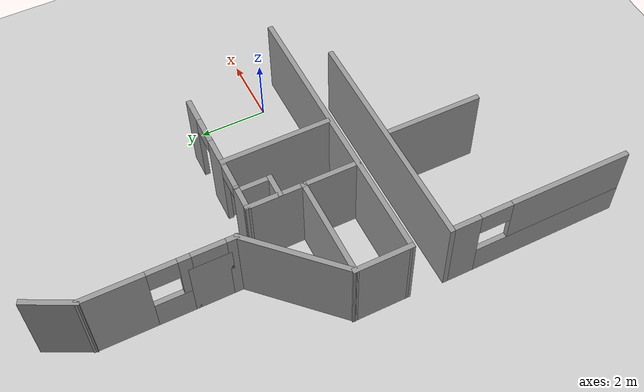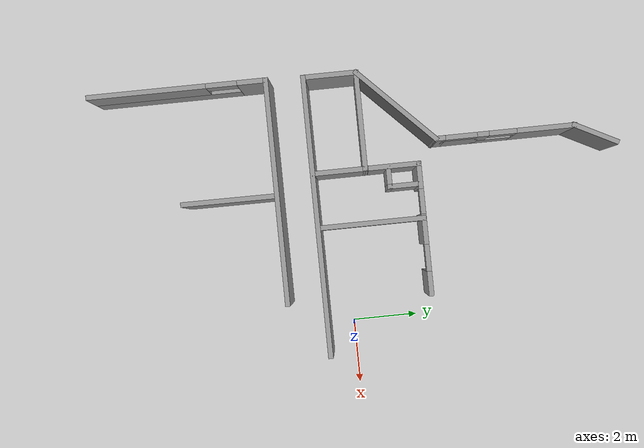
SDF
<sdf version="1.7">
 <world name="default">
  <model name="ground_plane">
   <static>1</static>
   <link name="link">
    <collision name="collision">
     <geometry><plane><normal>0 0 1</normal><size>100 100</size></plane></geometry>
     <surface><friction><ode><mu>100</mu><mu2>50</mu2></ode></friction></surface>
    </collision>
    <visual name="visual">
     <cast_shadows>0</cast_shadows>
     <geometry><plane><normal>0 0 1</normal><size>100 100</size></plane></geometry>
     <material>
      <script><uri>file://media/materials/scripts/gazebo.material</uri><name>Gazebo/Grey</name></script>
     </material>
    </visual>
   </link>
  </model>
  <model name="lake_harbour_office">
   <link name="Wall_26">
    <pose>-4.26687 8.47883 0 0 0 -2.04113</pose>
    <visual name="Wall_26_Visual">
     <pose>0 0 1.25 0 -0 0</pose>
     <geometry><box><size>1.5119 0.15 2.5</size></box></geometry>
     <material>
      <script><uri>file://media/materials/scripts/gazebo.material</uri><name>Gazebo/Grey</name></script>
      <ambient>1 1 1 1</ambient>
      <shader type="pixel"/>
     </material>
     <meta><layer>0</layer></meta>
    </visual>
    <collision name="Wall_26_Collision">
     <pose>0 0 1.25 0 -0 0</pose>
     <geometry><box><size>1.5119 0.15 2.5</size></box></geometry>
     <surface>
      <friction>
       <ode><mu>1</mu><mu2>1</mu2><fdir1>0 0 0</fdir1><slip1>0</slip1><slip2>0</slip2></ode>
       <torsional>
        <coefficient>1</coefficient>
        <patch_radius>0</patch_radius>
        <surface_radius>0</surface_radius>
        <use_patch_radius>1</use_patch_radius>
        <ode><slip>0</slip></ode>
       </torsional>
      </friction>
      <bounce><restitution_coefficient>0</restitution_coefficient><threshold>1e+06</threshold></bounce>
      <contact>
       <collide_without_contact>0</collide_without_contact>
       <collide_without_contact_bitmask>1</collide_without_contact_bitmask>
       <collide_bitmask>1</collide_bitmask>
       <ode>
        <soft_cfm>0</soft_cfm>
        <soft_erp>0.2</soft_erp>
        <kp>1e+13</kp>
        <kd>1</kd>
        <max_vel>0.01</max_vel>
        <min_depth>0</min_depth>
       </ode>
       <bullet>
        <split_impulse>1</split_impulse>
        <split_impulse_penetration_threshold>-0.01</split_impulse_penetration_threshold>
        <soft_cfm>0</soft_cfm>
        <soft_erp>0.2</soft_erp>
        <kp>1e+13</kp>
        <kd>1</kd>
       </bullet>
      </contact>
     </surface>
    </collision>
   </link>
   <link name="Wall_28">
    <pose>-4.57547 5.77869 0 0 0 -1.5708</pose>
    <inertial>
     <mass>1</mass>
     <inertia><ixx>1</ixx><ixy>0</ixy><ixz>0</ixz><iyy>1</iyy><iyz>0</iyz><izz>1</izz></inertia>
    </inertial>
    <visual name="Wall_28_Visual_5">
     <pose>1.32226 0 2.25 0 -0 0</pose>
     <geometry><box><size>0.960993 0.15 0.5</size></box></geometry>
     <material>
      <script><uri>file://media/materials/scripts/gazebo.material</uri><name>Gazebo/Grey</name></script>
      <ambient>1 1 1 1</ambient>
      <shader type="pixel"><normal_map>__default__</normal_map></shader>
      <diffuse>0.7 0.7 0.7 1</diffuse>
      <specular>0.01 0.01 0.01 1</specular>
      <emissive>0 0 0 1</emissive>
     </material>
     <meta><layer>0</layer></meta>
    </visual>
    <visual name="Wall_28_Visual_4">
     <pose>0.066565 0 2.15 0 -0 0</pose>
     <geometry><box><size>0.840547 0.15 0.7</size></box></geometry>
     <material>
      <script><uri>file://media/materials/scripts/gazebo.material</uri><name>Gazebo/Grey</name></script>
      <ambient>1 1 1 1</ambient>
      <shader type="pixel"><normal_map>__default__</normal_map></shader>
      <diffuse>0.7 0.7 0.7 1</diffuse>
      <specular>0.01 0.01 0.01 1</specular>
      <emissive>0 0 0 1</emissive>
     </material>
     <meta><layer>0</layer></meta>
    </visual>
    <visual name="Wall_28_Visual_0">
     <pose>-1.26092 0 1.25 0 -0 0</pose>
     <geometry><box><size>1.81443 0.15 2.5</size></box></geometry>
     <material>
      <script><uri>file://media/materials/scripts/gazebo.material</uri><name>Gazebo/Grey</name></script>
      <ambient>1 1 1 1</ambient>
      <shader type="pixel"><normal_map>__default__</normal_map></shader>
      <diffuse>0.7 0.7 0.7 1</diffuse>
      <specular>0.01 0.01 0.01 1</specular>
      <emissive>0 0 0 1</emissive>
     </material>
     <meta><layer>0</layer></meta>
    </visual>
    <visual name="Wall_28_Visual_2">
     <pose>0.244026 0 0.5 0 -0 0</pose>
     <geometry><box><size>1.19547 0.15 1</size></box></geometry>
     <material>
      <script><uri>file://media/materials/scripts/gazebo.material</uri><name>Gazebo/Grey</name></script>
      <ambient>1 1 1 1</ambient>
      <shader type="pixel"><normal_map>__default__</normal_map></shader>
      <diffuse>0.7 0.7 0.7 1</diffuse>
      <specular>0.01 0.01 0.01 1</specular>
      <emissive>0 0 0 1</emissive>
     </material>
     <meta><layer>0</layer></meta>
    </visual>
    <visual name="Wall_28_Visual_3">
     <pose>0.6643 0 1.75 0 -0 0</pose>
     <geometry><box><size>0.354924 0.15 1.5</size></box></geometry>
     <material>
      <script><uri>file://media/materials/scripts/gazebo.material</uri><name>Gazebo/Grey</name></script>
      <ambient>1 1 1 1</ambient>
      <shader type="pixel"><normal_map>__default__</normal_map></shader>
      <diffuse>0.7 0.7 0.7 1</diffuse>
      <specular>0.01 0.01 0.01 1</specular>
      <emissive>0 0 0 1</emissive>
     </material>
     <meta><layer>0</layer></meta>
    </visual>
    <visual name="Wall_28_Visual_1">
     <pose>1.98545 0 1.25 0 -0 0</pose>
     <geometry><box><size>0.365381 0.15 2.5</size></box></geometry>
     <material>
      <script><uri>file://media/materials/scripts/gazebo.material</uri><name>Gazebo/Grey</name></script>
      <ambient>1 1 1 1</ambient>
      <shader type="pixel"><normal_map>__default__</normal_map></shader>
      <diffuse>0.7 0.7 0.7 1</diffuse>
      <specular>0.01 0.01 0.01 1</specular>
      <emissive>0 0 0 1</emissive>
     </material>
     <meta><layer>0</layer></meta>
    </visual>
    <visual name="ModelPreview_5::Wall_28::visual_6">
     <pose>1.3 0 1 0 -0 0</pose>
     <geometry><box><size>1.2 0.15 2</size></box></geometry>
     <material>
      <script><uri>file://media/materials/scripts/gazebo.material</uri><name>Gazebo/Grey</name></script>
      <ambient>1 1 1 1</ambient>
      <shader type="pixel"><normal_map>__default__</normal_map></shader>
      <diffuse>0.7 0.7 0.7 1</diffuse>
      <specular>0.01 0.01 0.01 1</specular>
      <emissive>0 0 0 1</emissive>
     </material>
     <meta><layer>0</layer></meta>
    </visual>
    <collision name="Wall_28_Collision_5">
     <pose>1.32226 0 2.25 0 -0 0</pose>
     <geometry><box><size>0.960993 0.15 0.5</size></box></geometry>
     <surface>
      <friction>
       <ode><mu>1</mu><mu2>1</mu2><fdir1>0 0 0</fdir1><slip1>0</slip1><slip2>0</slip2></ode>
       <torsional>
        <coefficient>1</coefficient>
        <patch_radius>0</patch_radius>
        <surface_radius>0</surface_radius>
        <use_patch_radius>1</use_patch_radius>
        <ode><slip>0</slip></ode>
       </torsional>
      </friction>
      <bounce><restitution_coefficient>0</restitution_coefficient><threshold>1e+06</threshold></bounce>
      <contact>
       <collide_without_contact>0</collide_without_contact>
       <collide_without_contact_bitmask>1</collide_without_contact_bitmask>
       <collide_bitmask>1</collide_bitmask>
       <ode>
        <soft_cfm>0</soft_cfm>
        <soft_erp>0.2</soft_erp>
        <kp>1e+13</kp>
        <kd>1</kd>
        <max_vel>0.01</max_vel>
        <min_depth>0</min_depth>
       </ode>
       <bullet>
        <split_impulse>1</split_impulse>
        <split_impulse_penetration_threshold>-0.01</split_impulse_penetration_threshold>
        <soft_cfm>0</soft_cfm>
        <soft_erp>0.2</soft_erp>
        <kp>1e+13</kp>
        <kd>1</kd>
       </bullet>
      </contact>
     </surface>
    </collision>
    <collision name="Wall_28_Collision_4">
     <pose>0.066565 0 2.15 0 -0 0</pose>
     <geometry><box><size>0.840547 0.15 0.7</size></box></geometry>
     <surface>
      <friction>
       <ode><mu>1</mu><mu2>1</mu2><fdir1>0 0 0</fdir1><slip1>0</slip1><slip2>0</slip2></ode>
       <torsional>
        <coefficient>1</coefficient>
        <patch_radius>0</patch_radius>
        <surface_radius>0</surface_radius>
        <use_patch_radius>1</use_patch_radius>
        <ode><slip>0</slip></ode>
       </torsional>
      </friction>
      <bounce><restitution_coefficient>0</restitution_coefficient><threshold>1e+06</threshold></bounce>
      <contact>
       <collide_without_contact>0</collide_without_contact>
       <collide_without_contact_bitmask>1</collide_without_contact_bitmask>
       <collide_bitmask>1</collide_bitmask>
       <ode>
        <soft_cfm>0</soft_cfm>
        <soft_erp>0.2</soft_erp>
        <kp>1e+13</kp>
        <kd>1</kd>
        <max_vel>0.01</max_vel>
        <min_depth>0</min_depth>
       </ode>
       <bullet>
        <split_impulse>1</split_impulse>
        <split_impulse_penetration_threshold>-0.01</split_impulse_penetration_threshold>
        <soft_cfm>0</soft_cfm>
        <soft_erp>0.2</soft_erp>
        <kp>1e+13</kp>
        <kd>1</kd>
       </bullet>
      </contact>
     </surface>
    </collision>
    <collision name="Wall_28_Collision_2">
     <pose>0.244026 0 0.5 0 -0 0</pose>
     <geometry><box><size>1.19547 0.15 1</size></box></geometry>
     <surface>
      <friction>
       <ode><mu>1</mu><mu2>1</mu2><fdir1>0 0 0</fdir1><slip1>0</slip1><slip2>0</slip2></ode>
       <torsional>
        <coefficient>1</coefficient>
        <patch_radius>0</patch_radius>
        <surface_radius>0</surface_radius>
        <use_patch_radius>1</use_patch_radius>
        <ode><slip>0</slip></ode>
       </torsional>
      </friction>
      <bounce><restitution_coefficient>0</restitution_coefficient><threshold>1e+06</threshold></bounce>
      <contact>
       <collide_without_contact>0</collide_without_contact>
       <collide_without_contact_bitmask>1</collide_without_contact_bitmask>
       <collide_bitmask>1</collide_bitmask>
       <ode>
        <soft_cfm>0</soft_cfm>
        <soft_erp>0.2</soft_erp>
        <kp>1e+13</kp>
        <kd>1</kd>
        <max_vel>0.01</max_vel>
        <min_depth>0</min_depth>
       </ode>
       <bullet>
        <split_impulse>1</split_impulse>
        <split_impulse_penetration_threshold>-0.01</split_impulse_penetration_threshold>
        <soft_cfm>0</soft_cfm>
        <soft_erp>0.2</soft_erp>
        <kp>1e+13</kp>
        <kd>1</kd>
       </bullet>
      </contact>
     </surface>
    </collision>
    <collision name="collision_6">
     <pose>1.3 0 1 0 -0 0</pose>
     <geometry><box><size>1.2 0.15 2</size></box></geometry>
     <surface>
      <friction>
       <ode><mu>1</mu><mu2>1</mu2><fdir1>0 0 0</fdir1><slip1>0</slip1><slip2>0</slip2></ode>
       <torsional>
        <coefficient>1</coefficient>
        <patch_radius>0</patch_radius>
        <surface_radius>0</surface_radius>
        <use_patch_radius>1</use_patch_radius>
        <ode><slip>0</slip></ode>
       </torsional>
      </friction>
      <bounce><restitution_coefficient>0</restitution_coefficient><threshold>1e+06</threshold></bounce>
      <contact>
       <collide_without_contact>0</collide_without_contact>
       <collide_without_contact_bitmask>1</collide_without_contact_bitmask>
       <collide_bitmask>1</collide_bitmask>
       <ode>
        <soft_cfm>0</soft_cfm>
        <soft_erp>0.2</soft_erp>
        <kp>1e+13</kp>
        <kd>1</kd>
        <max_vel>0.01</max_vel>
        <min_depth>0</min_depth>
       </ode>
       <bullet>
        <split_impulse>1</split_impulse>
        <split_impulse_penetration_threshold>-0.01</split_impulse_penetration_threshold>
        <soft_cfm>0</soft_cfm>
        <soft_erp>0.2</soft_erp>
        <kp>1e+13</kp>
        <kd>1</kd>
       </bullet>
      </contact>
     </surface>
    </collision>
    <collision name="Wall_28_Collision_3">
     <pose>0.6643 0 1.75 0 -0 0</pose>
     <geometry><box><size>0.354924 0.15 1.5</size></box></geometry>
     <surface>
      <friction>
       <ode><mu>1</mu><mu2>1</mu2><fdir1>0 0 0</fdir1><slip1>0</slip1><slip2>0</slip2></ode>
       <torsional>
        <coefficient>1</coefficient>
        <patch_radius>0</patch_radius>
        <surface_radius>0</surface_radius>
        <use_patch_radius>1</use_patch_radius>
        <ode><slip>0</slip></ode>
       </torsional>
      </friction>
      <bounce><restitution_coefficient>0</restitution_coefficient><threshold>1e+06</threshold></bounce>
      <contact>
       <collide_without_contact>0</collide_without_contact>
       <collide_without_contact_bitmask>1</collide_without_contact_bitmask>
       <collide_bitmask>1</collide_bitmask>
       <ode>
        <soft_cfm>0</soft_cfm>
        <soft_erp>0.2</soft_erp>
        <kp>1e+13</kp>
        <kd>1</kd>
        <max_vel>0.01</max_vel>
        <min_depth>0</min_depth>
       </ode>
       <bullet>
        <split_impulse>1</split_impulse>
        <split_impulse_penetration_threshold>-0.01</split_impulse_penetration_threshold>
        <soft_cfm>0</soft_cfm>
        <soft_erp>0.2</soft_erp>
        <kp>1e+13</kp>
        <kd>1</kd>
       </bullet>
      </contact>
     </surface>
    </collision>
    <collision name="Wall_28_Collision_1">
     <pose>1.98545 0 1.25 0 -0 0</pose>
     <geometry><box><size>0.365381 0.15 2.5</size></box></geometry>
     <surface>
      <friction>
       <ode><mu>1</mu><mu2>1</mu2><fdir1>0 0 0</fdir1><slip1>0</slip1><slip2>0</slip2></ode>
       <torsional>
        <coefficient>1</coefficient>
        <patch_radius>0</patch_radius>
        <surface_radius>0</surface_radius>
        <use_patch_radius>1</use_patch_radius>
        <ode><slip>0</slip></ode>
       </torsional>
      </friction>
      <bounce><restitution_coefficient>0</restitution_coefficient><threshold>1e+06</threshold></bounce>
      <contact>
       <collide_without_contact>0</collide_without_contact>
       <collide_without_contact_bitmask>1</collide_without_contact_bitmask>
       <collide_bitmask>1</collide_bitmask>
       <ode>
        <soft_cfm>0</soft_cfm>
        <soft_erp>0.2</soft_erp>
        <kp>1e+13</kp>
        <kd>1</kd>
        <max_vel>0.01</max_vel>
        <min_depth>0</min_depth>
       </ode>
       <bullet>
        <split_impulse>1</split_impulse>
        <split_impulse_penetration_threshold>-0.01</split_impulse_penetration_threshold>
        <soft_cfm>0</soft_cfm>
        <soft_erp>0.2</soft_erp>
        <kp>1e+13</kp>
        <kd>1</kd>
       </bullet>
      </contact>
     </surface>
    </collision>
    <collision name="Wall_28_Collision_0">
     <pose>-1.26092 0 1.25 0 -0 0</pose>
     <geometry><box><size>1.81443 0.15 2.5</size></box></geometry>
     <surface>
      <friction>
       <ode><mu>1</mu><mu2>1</mu2><fdir1>0 0 0</fdir1><slip1>0</slip1><slip2>0</slip2></ode>
       <torsional>
        <coefficient>1</coefficient>
        <patch_radius>0</patch_radius>
        <surface_radius>0</surface_radius>
        <use_patch_radius>1</use_patch_radius>
        <ode><slip>0</slip></ode>
       </torsional>
      </friction>
      <bounce><restitution_coefficient>0</restitution_coefficient><threshold>1e+06</threshold></bounce>
      <contact>
       <collide_without_contact>0</collide_without_contact>
       <collide_without_contact_bitmask>1</collide_without_contact_bitmask>
       <collide_bitmask>1</collide_bitmask>
       <ode>
        <soft_cfm>0</soft_cfm>
        <soft_erp>0.2</soft_erp>
        <kp>1e+13</kp>
        <kd>1</kd>
        <max_vel>0.01</max_vel>
        <min_depth>0</min_depth>
       </ode>
       <bullet>
        <split_impulse>1</split_impulse>
        <split_impulse_penetration_threshold>-0.01</split_impulse_penetration_threshold>
        <soft_cfm>0</soft_cfm>
        <soft_erp>0.2</soft_erp>
        <kp>1e+13</kp>
        <kd>1</kd>
       </bullet>
      </contact>
     </surface>
    </collision>
   </link>
   <link name="Wall_30">
    <pose>-5.6836 2.58621 0 0 0 -2.36018</pose>
    <visual name="Wall_30_Visual">
     <pose>0 0 1.25 0 -0 0</pose>
     <geometry><box><size>3.27185 0.15 2.5</size></box></geometry>
     <material>
      <script><uri>file://media/materials/scripts/gazebo.material</uri><name>Gazebo/Grey</name></script>
      <ambient>1 1 1 1</ambient>
      <shader type="pixel"/>
     </material>
     <meta><layer>0</layer></meta>
    </visual>
    <collision name="Wall_30_Collision">
     <pose>0 0 1.25 0 -0 0</pose>
     <geometry><box><size>3.27185 0.15 2.5</size></box></geometry>
     <surface>
      <friction>
       <ode><mu>1</mu><mu2>1</mu2><fdir1>0 0 0</fdir1><slip1>0</slip1><slip2>0</slip2></ode>
       <torsional>
        <coefficient>1</coefficient>
        <patch_radius>0</patch_radius>
        <surface_radius>0</surface_radius>
        <use_patch_radius>1</use_patch_radius>
        <ode><slip>0</slip></ode>
       </torsional>
      </friction>
      <bounce><restitution_coefficient>0</restitution_coefficient><threshold>1e+06</threshold></bounce>
      <contact>
       <collide_without_contact>0</collide_without_contact>
       <collide_without_contact_bitmask>1</collide_without_contact_bitmask>
       <collide_bitmask>1</collide_bitmask>
       <ode>
        <soft_cfm>0</soft_cfm>
        <soft_erp>0.2</soft_erp>
        <kp>1e+13</kp>
        <kd>1</kd>
        <max_vel>0.01</max_vel>
        <min_depth>0</min_depth>
       </ode>
       <bullet>
        <split_impulse>1</split_impulse>
        <split_impulse_penetration_threshold>-0.01</split_impulse_penetration_threshold>
        <soft_cfm>0</soft_cfm>
        <soft_erp>0.2</soft_erp>
        <kp>1e+13</kp>
        <kd>1</kd>
       </bullet>
      </contact>
     </surface>
    </collision>
   </link>
   <link name="Wall_32">
    <pose>-6.80053 0.686876 0 0 0 -1.5708</pose>
    <visual name="Wall_32_Visual">
     <pose>0 0 1.25 0 -0 0</pose>
     <geometry><box><size>1.75 0.15 2.5</size></box></geometry>
     <material>
      <script><uri>file://media/materials/scripts/gazebo.material</uri><name>Gazebo/Grey</name></script>
      <ambient>1 1 1 1</ambient>
      <shader type="pixel"/>
     </material>
     <meta><layer>0</layer></meta>
    </visual>
    <collision name="Wall_32_Collision">
     <pose>0 0 1.25 0 -0 0</pose>
     <geometry><box><size>1.75 0.15 2.5</size></box></geometry>
     <surface>
      <friction>
       <ode><mu>1</mu><mu2>1</mu2><fdir1>0 0 0</fdir1><slip1>0</slip1><slip2>0</slip2></ode>
       <torsional>
        <coefficient>1</coefficient>
        <patch_radius>0</patch_radius>
        <surface_radius>0</surface_radius>
        <use_patch_radius>1</use_patch_radius>
        <ode><slip>0</slip></ode>
       </torsional>
      </friction>
      <bounce><restitution_coefficient>0</restitution_coefficient><threshold>1e+06</threshold></bounce>
      <contact>
       <collide_without_contact>0</collide_without_contact>
       <collide_without_contact_bitmask>1</collide_without_contact_bitmask>
       <collide_bitmask>1</collide_bitmask>
       <ode>
        <soft_cfm>0</soft_cfm>
        <soft_erp>0.2</soft_erp>
        <kp>1e+13</kp>
        <kd>1</kd>
        <max_vel>0.01</max_vel>
        <min_depth>0</min_depth>
       </ode>
       <bullet>
        <split_impulse>1</split_impulse>
        <split_impulse_penetration_threshold>-0.01</split_impulse_penetration_threshold>
        <soft_cfm>0</soft_cfm>
        <soft_erp>0.2</soft_erp>
        <kp>1e+13</kp>
        <kd>1</kd>
       </bullet>
      </contact>
     </surface>
    </collision>
   </link>
   <link name="Wall_34">
    <pose>-2.59189 -0.111503 0 0 -0 0.000385</pose>
    <visual name="Wall_34_Visual">
     <pose>0 0 1.25 0 -0 0</pose>
     <geometry><box><size>8.56728 0.15 2.5</size></box></geometry>
     <material>
      <script><uri>file://media/materials/scripts/gazebo.material</uri><name>Gazebo/Grey</name></script>
      <ambient>1 1 1 1</ambient>
      <shader type="pixel"/>
     </material>
     <meta><layer>0</layer></meta>
    </visual>
    <collision name="Wall_34_Collision">
     <pose>0 0 1.25 0 -0 0</pose>
     <geometry><box><size>8.56728 0.15 2.5</size></box></geometry>
     <surface>
      <friction>
       <ode><mu>1</mu><mu2>1</mu2><fdir1>0 0 0</fdir1><slip1>0</slip1><slip2>0</slip2></ode>
       <torsional>
        <coefficient>1</coefficient>
        <patch_radius>0</patch_radius>
        <surface_radius>0</surface_radius>
        <use_patch_radius>1</use_patch_radius>
        <ode><slip>0</slip></ode>
       </torsional>
      </friction>
      <bounce><restitution_coefficient>0</restitution_coefficient><threshold>1e+06</threshold></bounce>
      <contact>
       <collide_without_contact>0</collide_without_contact>
       <collide_without_contact_bitmask>1</collide_without_contact_bitmask>
       <collide_bitmask>1</collide_bitmask>
       <ode>
        <soft_cfm>0</soft_cfm>
        <soft_erp>0.2</soft_erp>
        <kp>1e+13</kp>
        <kd>1</kd>
        <max_vel>0.01</max_vel>
        <min_depth>0</min_depth>
       </ode>
       <bullet>
        <split_impulse>1</split_impulse>
        <split_impulse_penetration_threshold>-0.01</split_impulse_penetration_threshold>
        <soft_cfm>0</soft_cfm>
        <soft_erp>0.2</soft_erp>
        <kp>1e+13</kp>
        <kd>1</kd>
       </bullet>
      </contact>
     </surface>
    </collision>
   </link>
   <link name="Wall_46">
    <pose>-5.34461 1.48325 0 0 0 -0.002488</pose>
    <visual name="Wall_46_Visual">
     <pose>0 0 1.25 0 -0 0</pose>
     <geometry><box><size>3.06184 0.15 2.5</size></box></geometry>
     <material>
      <script><uri>file://media/materials/scripts/gazebo.material</uri><name>Gazebo/Grey</name></script>
      <ambient>1 1 1 1</ambient>
      <shader type="pixel"/>
     </material>
     <meta><layer>0</layer></meta>
    </visual>
    <collision name="Wall_46_Collision">
     <pose>0 0 1.25 0 -0 0</pose>
     <geometry><box><size>3.06184 0.15 2.5</size></box></geometry>
     <surface>
      <friction>
       <ode><mu>1</mu><mu2>1</mu2><fdir1>0 0 0</fdir1><slip1>0</slip1><slip2>0</slip2></ode>
       <torsional>
        <coefficient>1</coefficient>
        <patch_radius>0</patch_radius>
        <surface_radius>0</surface_radius>
        <use_patch_radius>1</use_patch_radius>
        <ode><slip>0</slip></ode>
       </torsional>
      </friction>
      <bounce><restitution_coefficient>0</restitution_coefficient><threshold>1e+06</threshold></bounce>
      <contact>
       <collide_without_contact>0</collide_without_contact>
       <collide_without_contact_bitmask>1</collide_without_contact_bitmask>
       <collide_bitmask>1</collide_bitmask>
       <ode>
        <soft_cfm>0</soft_cfm>
        <soft_erp>0.2</soft_erp>
        <kp>1e+13</kp>
        <kd>1</kd>
        <max_vel>0.01</max_vel>
        <min_depth>0</min_depth>
       </ode>
       <bullet>
        <split_impulse>1</split_impulse>
        <split_impulse_penetration_threshold>-0.01</split_impulse_penetration_threshold>
        <soft_cfm>0</soft_cfm>
        <soft_erp>0.2</soft_erp>
        <kp>1e+13</kp>
        <kd>1</kd>
       </bullet>
      </contact>
     </surface>
    </collision>
   </link>
   <link name="Wall_48">
    <pose>-3.88869 0.693247 0 0 -0 1.5708</pose>
    <visual name="Wall_48_Visual">
     <pose>0 0 1.25 0 -0 0</pose>
     <geometry><box><size>1.75 0.15 2.5</size></box></geometry>
     <material>
      <script><uri>file://media/materials/scripts/gazebo.material</uri><name>Gazebo/Grey</name></script>
      <ambient>1 1 1 1</ambient>
      <shader type="pixel"/>
     </material>
     <meta><layer>0</layer></meta>
    </visual>
    <collision name="Wall_48_Collision">
     <pose>0 0 1.25 0 -0 0</pose>
     <geometry><box><size>1.75 0.15 2.5</size></box></geometry>
     <surface>
      <friction>
       <ode><mu>1</mu><mu2>1</mu2><fdir1>0 0 0</fdir1><slip1>0</slip1><slip2>0</slip2></ode>
       <torsional>
        <coefficient>1</coefficient>
        <patch_radius>0</patch_radius>
        <surface_radius>0</surface_radius>
        <use_patch_radius>1</use_patch_radius>
        <ode><slip>0</slip></ode>
       </torsional>
      </friction>
      <bounce><restitution_coefficient>0</restitution_coefficient><threshold>1e+06</threshold></bounce>
      <contact>
       <collide_without_contact>0</collide_without_contact>
       <collide_without_contact_bitmask>1</collide_without_contact_bitmask>
       <collide_bitmask>1</collide_bitmask>
       <ode>
        <soft_cfm>0</soft_cfm>
        <soft_erp>0.2</soft_erp>
        <kp>1e+13</kp>
        <kd>1</kd>
        <max_vel>0.01</max_vel>
        <min_depth>0</min_depth>
       </ode>
       <bullet>
        <split_impulse>1</split_impulse>
        <split_impulse_penetration_threshold>-0.01</split_impulse_penetration_threshold>
        <soft_cfm>0</soft_cfm>
        <soft_erp>0.2</soft_erp>
        <kp>1e+13</kp>
        <kd>1</kd>
       </bullet>
      </contact>
     </surface>
    </collision>
   </link>
   <link name="Wall_49">
    <pose>-3.88939 2.29243 0 0 -0 1.57167</pose>
    <visual name="Wall_49_Visual">
     <pose>0 0 1.25 0 -0 0</pose>
     <geometry><box><size>1.74836 0.15 2.5</size></box></geometry>
     <material>
      <script><uri>file://media/materials/scripts/gazebo.material</uri><name>Gazebo/Grey</name></script>
      <ambient>1 1 1 1</ambient>
      <shader type="pixel"/>
     </material>
     <meta><layer>0</layer></meta>
    </visual>
    <collision name="Wall_49_Collision">
     <pose>0 0 1.25 0 -0 0</pose>
     <geometry><box><size>1.74836 0.15 2.5</size></box></geometry>
     <surface>
      <friction>
       <ode><mu>1</mu><mu2>1</mu2><fdir1>0 0 0</fdir1><slip1>0</slip1><slip2>0</slip2></ode>
       <torsional>
        <coefficient>1</coefficient>
        <patch_radius>0</patch_radius>
        <surface_radius>0</surface_radius>
        <use_patch_radius>1</use_patch_radius>
        <ode><slip>0</slip></ode>
       </torsional>
      </friction>
      <bounce><restitution_coefficient>0</restitution_coefficient><threshold>1e+06</threshold></bounce>
      <contact>
       <collide_without_contact>0</collide_without_contact>
       <collide_without_contact_bitmask>1</collide_without_contact_bitmask>
       <collide_bitmask>1</collide_bitmask>
       <ode>
        <soft_cfm>0</soft_cfm>
        <soft_erp>0.2</soft_erp>
        <kp>1e+13</kp>
        <kd>1</kd>
        <max_vel>0.01</max_vel>
        <min_depth>0</min_depth>
       </ode>
       <bullet>
        <split_impulse>1</split_impulse>
        <split_impulse_penetration_threshold>-0.01</split_impulse_penetration_threshold>
        <soft_cfm>0</soft_cfm>
        <soft_erp>0.2</soft_erp>
        <kp>1e+13</kp>
        <kd>1</kd>
       </bullet>
      </contact>
     </surface>
    </collision>
   </link>
   <link name="Wall_50">
    <pose>-1.92323 3.09226 0 0 -0 0.000329</pose>
    <visual name="Wall_50_Visual_4">
     <pose>0.884999 0 2.25 0 -0 0</pose>
     <geometry><box><size>0.813108 0.15 0.5</size></box></geometry>
     <material>
      <script><uri>file://media/materials/scripts/gazebo.material</uri><name>Gazebo/Grey</name></script>
      <ambient>1 1 1 1</ambient>
      <shader type="pixel"/>
     </material>
     <meta><layer>0</layer></meta>
    </visual>
    <visual name="Wall_50_Visual_3">
     <pose>-0.823912 0 2.25 0 -0 0</pose>
     <geometry><box><size>0.759629 0.15 0.5</size></box></geometry>
     <material>
      <script><uri>file://media/materials/scripts/gazebo.material</uri><name>Gazebo/Grey</name></script>
      <ambient>1 1 1 1</ambient>
      <shader type="pixel"/>
     </material>
     <meta><layer>0</layer></meta>
    </visual>
    <visual name="Wall_50_Visual_0">
     <pose>-1.62279 0 1.25 0 -0 0</pose>
     <geometry><box><size>0.838129 0.15 2.5</size></box></geometry>
     <material>
      <script><uri>file://media/materials/scripts/gazebo.material</uri><name>Gazebo/Grey</name></script>
      <ambient>1 1 1 1</ambient>
      <shader type="pixel"/>
     </material>
     <meta><layer>0</layer></meta>
    </visual>
    <visual name="Wall_50_Visual_2">
     <pose>1.6667 0 1.25 0 -0 0</pose>
     <geometry><box><size>0.750303 0.15 2.5</size></box></geometry>
     <material>
      <script><uri>file://media/materials/scripts/gazebo.material</uri><name>Gazebo/Grey</name></script>
      <ambient>1 1 1 1</ambient>
      <shader type="pixel"/>
     </material>
     <meta><layer>0</layer></meta>
    </visual>
    <visual name="Wall_50_Visual_1">
     <pose>0.017174 0 1.25 0 -0 0</pose>
     <geometry><box><size>0.922542 0.15 2.5</size></box></geometry>
     <material>
      <script><uri>file://media/materials/scripts/gazebo.material</uri><name>Gazebo/Grey</name></script>
      <ambient>1 1 1 1</ambient>
      <shader type="pixel"/>
     </material>
     <meta><layer>0</layer></meta>
    </visual>
    <collision name="Wall_50_Collision_1">
     <pose>0.017174 0 1.25 0 -0 0</pose>
     <geometry><box><size>0.922542 0.15 2.5</size></box></geometry>
     <surface>
      <friction>
       <ode><mu>1</mu><mu2>1</mu2><fdir1>0 0 0</fdir1><slip1>0</slip1><slip2>0</slip2></ode>
       <torsional>
        <coefficient>1</coefficient>
        <patch_radius>0</patch_radius>
        <surface_radius>0</surface_radius>
        <use_patch_radius>1</use_patch_radius>
        <ode><slip>0</slip></ode>
       </torsional>
      </friction>
      <bounce><restitution_coefficient>0</restitution_coefficient><threshold>1e+06</threshold></bounce>
      <contact>
       <collide_without_contact>0</collide_without_contact>
       <collide_without_contact_bitmask>1</collide_without_contact_bitmask>
       <collide_bitmask>1</collide_bitmask>
       <ode>
        <soft_cfm>0</soft_cfm>
        <soft_erp>0.2</soft_erp>
        <kp>1e+13</kp>
        <kd>1</kd>
        <max_vel>0.01</max_vel>
        <min_depth>0</min_depth>
       </ode>
       <bullet>
        <split_impulse>1</split_impulse>
        <split_impulse_penetration_threshold>-0.01</split_impulse_penetration_threshold>
        <soft_cfm>0</soft_cfm>
        <soft_erp>0.2</soft_erp>
        <kp>1e+13</kp>
        <kd>1</kd>
       </bullet>
      </contact>
     </surface>
    </collision>
    <collision name="Wall_50_Collision_4">
     <pose>0.884999 0 2.25 0 -0 0</pose>
     <geometry><box><size>0.813108 0.15 0.5</size></box></geometry>
     <surface>
      <friction>
       <ode><mu>1</mu><mu2>1</mu2><fdir1>0 0 0</fdir1><slip1>0</slip1><slip2>0</slip2></ode>
       <torsional>
        <coefficient>1</coefficient>
        <patch_radius>0</patch_radius>
        <surface_radius>0</surface_radius>
        <use_patch_radius>1</use_patch_radius>
        <ode><slip>0</slip></ode>
       </torsional>
      </friction>
      <bounce><restitution_coefficient>0</restitution_coefficient><threshold>1e+06</threshold></bounce>
      <contact>
       <collide_without_contact>0</collide_without_contact>
       <collide_without_contact_bitmask>1</collide_without_contact_bitmask>
       <collide_bitmask>1</collide_bitmask>
       <ode>
        <soft_cfm>0</soft_cfm>
        <soft_erp>0.2</soft_erp>
        <kp>1e+13</kp>
        <kd>1</kd>
        <max_vel>0.01</max_vel>
        <min_depth>0</min_depth>
       </ode>
       <bullet>
        <split_impulse>1</split_impulse>
        <split_impulse_penetration_threshold>-0.01</split_impulse_penetration_threshold>
        <soft_cfm>0</soft_cfm>
        <soft_erp>0.2</soft_erp>
        <kp>1e+13</kp>
        <kd>1</kd>
       </bullet>
      </contact>
     </surface>
    </collision>
    <collision name="Wall_50_Collision_0">
     <pose>-1.62279 0 1.25 0 -0 0</pose>
     <geometry><box><size>0.838129 0.15 2.5</size></box></geometry>
     <surface>
      <friction>
       <ode><mu>1</mu><mu2>1</mu2><fdir1>0 0 0</fdir1><slip1>0</slip1><slip2>0</slip2></ode>
       <torsional>
        <coefficient>1</coefficient>
        <patch_radius>0</patch_radius>
        <surface_radius>0</surface_radius>
        <use_patch_radius>1</use_patch_radius>
        <ode><slip>0</slip></ode>
       </torsional>
      </friction>
      <bounce><restitution_coefficient>0</restitution_coefficient><threshold>1e+06</threshold></bounce>
      <contact>
       <collide_without_contact>0</collide_without_contact>
       <collide_without_contact_bitmask>1</collide_without_contact_bitmask>
       <collide_bitmask>1</collide_bitmask>
       <ode>
        <soft_cfm>0</soft_cfm>
        <soft_erp>0.2</soft_erp>
        <kp>1e+13</kp>
        <kd>1</kd>
        <max_vel>0.01</max_vel>
        <min_depth>0</min_depth>
       </ode>
       <bullet>
        <split_impulse>1</split_impulse>
        <split_impulse_penetration_threshold>-0.01</split_impulse_penetration_threshold>
        <soft_cfm>0</soft_cfm>
        <soft_erp>0.2</soft_erp>
        <kp>1e+13</kp>
        <kd>1</kd>
       </bullet>
      </contact>
     </surface>
    </collision>
    <collision name="Wall_50_Collision_3">
     <pose>-0.823912 0 2.25 0 -0 0</pose>
     <geometry><box><size>0.759629 0.15 0.5</size></box></geometry>
     <surface>
      <friction>
       <ode><mu>1</mu><mu2>1</mu2><fdir1>0 0 0</fdir1><slip1>0</slip1><slip2>0</slip2></ode>
       <torsional>
        <coefficient>1</coefficient>
        <patch_radius>0</patch_radius>
        <surface_radius>0</surface_radius>
        <use_patch_radius>1</use_patch_radius>
        <ode><slip>0</slip></ode>
       </torsional>
      </friction>
      <bounce><restitution_coefficient>0</restitution_coefficient><threshold>1e+06</threshold></bounce>
      <contact>
       <collide_without_contact>0</collide_without_contact>
       <collide_without_contact_bitmask>1</collide_without_contact_bitmask>
       <collide_bitmask>1</collide_bitmask>
       <ode>
        <soft_cfm>0</soft_cfm>
        <soft_erp>0.2</soft_erp>
        <kp>1e+13</kp>
        <kd>1</kd>
        <max_vel>0.01</max_vel>
        <min_depth>0</min_depth>
       </ode>
       <bullet>
        <split_impulse>1</split_impulse>
        <split_impulse_penetration_threshold>-0.01</split_impulse_penetration_threshold>
        <soft_cfm>0</soft_cfm>
        <soft_erp>0.2</soft_erp>
        <kp>1e+13</kp>
        <kd>1</kd>
       </bullet>
      </contact>
     </surface>
    </collision>
    <collision name="Wall_50_Collision_2">
     <pose>1.6667 0 1.25 0 -0 0</pose>
     <geometry><box><size>0.750303 0.15 2.5</size></box></geometry>
     <surface>
      <friction>
       <ode><mu>1</mu><mu2>1</mu2><fdir1>0 0 0</fdir1><slip1>0</slip1><slip2>0</slip2></ode>
       <torsional>
        <coefficient>1</coefficient>
        <patch_radius>0</patch_radius>
        <surface_radius>0</surface_radius>
        <use_patch_radius>1</use_patch_radius>
        <ode><slip>0</slip></ode>
       </torsional>
      </friction>
      <bounce><restitution_coefficient>0</restitution_coefficient><threshold>1e+06</threshold></bounce>
      <contact>
       <collide_without_contact>0</collide_without_contact>
       <collide_without_contact_bitmask>1</collide_without_contact_bitmask>
       <collide_bitmask>1</collide_bitmask>
       <ode>
        <soft_cfm>0</soft_cfm>
        <soft_erp>0.2</soft_erp>
        <kp>1e+13</kp>
        <kd>1</kd>
        <max_vel>0.01</max_vel>
        <min_depth>0</min_depth>
       </ode>
       <bullet>
        <split_impulse>1</split_impulse>
        <split_impulse_penetration_threshold>-0.01</split_impulse_penetration_threshold>
        <soft_cfm>0</soft_cfm>
        <soft_erp>0.2</soft_erp>
        <kp>1e+13</kp>
        <kd>1</kd>
       </bullet>
      </contact>
     </surface>
    </collision>
   </link>
   <link name="Wall_53">
    <pose>-2.24582 1.53493 0 0 0 -1.5708</pose>
    <visual name="Wall_53_Visual">
     <pose>0 0 1.25 0 -0 0</pose>
     <geometry><box><size>3.25 0.15 2.5</size></box></geometry>
     <material>
      <script><uri>file://media/materials/scripts/gazebo.material</uri><name>Gazebo/Grey</name></script>
      <ambient>1 1 1 1</ambient>
      <shader type="pixel"/>
     </material>
     <meta><layer>0</layer></meta>
    </visual>
    <collision name="Wall_53_Collision">
     <pose>0 0 1.25 0 -0 0</pose>
     <geometry><box><size>3.25 0.15 2.5</size></box></geometry>
     <surface>
      <friction>
       <ode><mu>1</mu><mu2>1</mu2><fdir1>0 0 0</fdir1><slip1>0</slip1><slip2>0</slip2></ode>
       <torsional>
        <coefficient>1</coefficient>
        <patch_radius>0</patch_radius>
        <surface_radius>0</surface_radius>
        <use_patch_radius>1</use_patch_radius>
        <ode><slip>0</slip></ode>
       </torsional>
      </friction>
      <bounce><restitution_coefficient>0</restitution_coefficient><threshold>1e+06</threshold></bounce>
      <contact>
       <collide_without_contact>0</collide_without_contact>
       <collide_without_contact_bitmask>1</collide_without_contact_bitmask>
       <collide_bitmask>1</collide_bitmask>
       <ode>
        <soft_cfm>0</soft_cfm>
        <soft_erp>0.2</soft_erp>
        <kp>1e+13</kp>
        <kd>1</kd>
        <max_vel>0.01</max_vel>
        <min_depth>0</min_depth>
       </ode>
       <bullet>
        <split_impulse>1</split_impulse>
        <split_impulse_penetration_threshold>-0.01</split_impulse_penetration_threshold>
        <soft_cfm>0</soft_cfm>
        <soft_erp>0.2</soft_erp>
        <kp>1e+13</kp>
        <kd>1</kd>
       </bullet>
      </contact>
     </surface>
    </collision>
   </link>
   <link name="Wall_55">
    <pose>-3.28184 2.62373 0 0 0 -1.5708</pose>
    <visual name="Wall_55_Visual">
     <pose>0 0 1.25 0 -0 0</pose>
     <geometry><box><size>1.05905 0.15 2.5</size></box></geometry>
     <material>
      <script><uri>file://media/materials/scripts/gazebo.material</uri><name>Gazebo/Grey</name></script>
      <ambient>1 1 1 1</ambient>
      <shader type="pixel"/>
     </material>
     <meta><layer>0</layer></meta>
    </visual>
    <collision name="Wall_55_Collision">
     <pose>0 0 1.25 0 -0 0</pose>
     <geometry><box><size>1.05905 0.15 2.5</size></box></geometry>
     <surface>
      <friction>
       <ode><mu>1</mu><mu2>1</mu2><fdir1>0 0 0</fdir1><slip1>0</slip1><slip2>0</slip2></ode>
       <torsional>
        <coefficient>1</coefficient>
        <patch_radius>0</patch_radius>
        <surface_radius>0</surface_radius>
        <use_patch_radius>1</use_patch_radius>
        <ode><slip>0</slip></ode>
       </torsional>
      </friction>
      <bounce><restitution_coefficient>0</restitution_coefficient><threshold>1e+06</threshold></bounce>
      <contact>
       <collide_without_contact>0</collide_without_contact>
       <collide_without_contact_bitmask>1</collide_without_contact_bitmask>
       <collide_bitmask>1</collide_bitmask>
       <ode>
        <soft_cfm>0</soft_cfm>
        <soft_erp>0.2</soft_erp>
        <kp>1e+13</kp>
        <kd>1</kd>
        <max_vel>0.01</max_vel>
        <min_depth>0</min_depth>
       </ode>
       <bullet>
        <split_impulse>1</split_impulse>
        <split_impulse_penetration_threshold>-0.01</split_impulse_penetration_threshold>
        <soft_cfm>0</soft_cfm>
        <soft_erp>0.2</soft_erp>
        <kp>1e+13</kp>
        <kd>1</kd>
       </bullet>
      </contact>
     </surface>
    </collision>
   </link>
   <link name="Wall_56">
    <pose>-3.58184 2.16922 0 0 -0 3.14159</pose>
    <visual name="Wall_56_Visual">
     <pose>0 0 1.25 0 -0 0</pose>
     <geometry><box><size>0.75 0.15 2.5</size></box></geometry>
     <material>
      <script><uri>file://media/materials/scripts/gazebo.material</uri><name>Gazebo/Grey</name></script>
      <ambient>1 1 1 1</ambient>
      <shader type="pixel"/>
     </material>
     <meta><layer>0</layer></meta>
    </visual>
    <collision name="Wall_56_Collision">
     <pose>0 0 1.25 0 -0 0</pose>
     <geometry><box><size>0.75 0.15 2.5</size></box></geometry>
     <surface>
      <friction>
       <ode><mu>1</mu><mu2>1</mu2><fdir1>0 0 0</fdir1><slip1>0</slip1><slip2>0</slip2></ode>
       <torsional>
        <coefficient>1</coefficient>
        <patch_radius>0</patch_radius>
        <surface_radius>0</surface_radius>
        <use_patch_radius>1</use_patch_radius>
        <ode><slip>0</slip></ode>
       </torsional>
      </friction>
      <bounce><restitution_coefficient>0</restitution_coefficient><threshold>1e+06</threshold></bounce>
      <contact>
       <collide_without_contact>0</collide_without_contact>
       <collide_without_contact_bitmask>1</collide_without_contact_bitmask>
       <collide_bitmask>1</collide_bitmask>
       <ode>
        <soft_cfm>0</soft_cfm>
        <soft_erp>0.2</soft_erp>
        <kp>1e+13</kp>
        <kd>1</kd>
        <max_vel>0.01</max_vel>
        <min_depth>0</min_depth>
       </ode>
       <bullet>
        <split_impulse>1</split_impulse>
        <split_impulse_penetration_threshold>-0.01</split_impulse_penetration_threshold>
        <soft_cfm>0</soft_cfm>
        <soft_erp>0.2</soft_erp>
        <kp>1e+13</kp>
        <kd>1</kd>
       </bullet>
      </contact>
     </surface>
    </collision>
   </link>
   <link name="Wall_71">
    <pose>-3.45378 -1.24393 0 0 -0 3.14159</pose>
    <visual name="Wall_71_Visual">
     <pose>0 0 1.25 0 -0 0</pose>
     <geometry><box><size>6.91429 0.15 2.5</size></box></geometry>
     <material>
      <script><uri>file://media/materials/scripts/gazebo.material</uri><name>Gazebo/Grey</name></script>
      <ambient>1 1 1 1</ambient>
      <shader type="pixel"/>
     </material>
     <meta><layer>0</layer></meta>
    </visual>
    <collision name="Wall_71_Collision">
     <pose>0 0 1.25 0 -0 0</pose>
     <geometry><box><size>6.91429 0.15 2.5</size></box></geometry>
     <surface>
      <friction>
       <ode><mu>1</mu><mu2>1</mu2><fdir1>0 0 0</fdir1><slip1>0</slip1><slip2>0</slip2></ode>
       <torsional>
        <coefficient>1</coefficient>
        <patch_radius>0</patch_radius>
        <surface_radius>0</surface_radius>
        <use_patch_radius>1</use_patch_radius>
        <ode><slip>0</slip></ode>
       </torsional>
      </friction>
      <bounce><restitution_coefficient>0</restitution_coefficient><threshold>1e+06</threshold></bounce>
      <contact>
       <collide_without_contact>0</collide_without_contact>
       <collide_without_contact_bitmask>1</collide_without_contact_bitmask>
       <collide_bitmask>1</collide_bitmask>
       <ode>
        <soft_cfm>0</soft_cfm>
        <soft_erp>0.2</soft_erp>
        <kp>1e+13</kp>
        <kd>1</kd>
        <max_vel>0.01</max_vel>
        <min_depth>0</min_depth>
       </ode>
       <bullet>
        <split_impulse>1</split_impulse>
        <split_impulse_penetration_threshold>-0.01</split_impulse_penetration_threshold>
        <soft_cfm>0</soft_cfm>
        <soft_erp>0.2</soft_erp>
        <kp>1e+13</kp>
        <kd>1</kd>
       </bullet>
      </contact>
     </surface>
    </collision>
   </link>
   <link name="Wall_72">
    <pose>-6.83589 -3.91893 0 0 0 -1.5708</pose>
    <visual name="Wall_72_Visual_2">
     <pose>0.942489 0 1.75 0 -0 0</pose>
     <geometry><box><size>3.61502 0.15 1.5</size></box></geometry>
     <material>
      <script><uri>file://media/materials/scripts/gazebo.material</uri><name>Gazebo/Grey</name></script>
      <ambient>1 1 1 1</ambient>
      <shader type="pixel"/>
     </material>
     <meta><layer>0</layer></meta>
    </visual>
    <visual name="Wall_72_Visual_3">
     <pose>-1.33602 0 2.15 0 -0 0</pose>
     <geometry><box><size>0.942 0.15 0.7</size></box></geometry>
     <material>
      <script><uri>file://media/materials/scripts/gazebo.material</uri><name>Gazebo/Grey</name></script>
      <ambient>1 1 1 1</ambient>
      <shader type="pixel"/>
     </material>
     <meta><layer>0</layer></meta>
    </visual>
    <visual name="Wall_72_Visual_0">
     <pose>-2.27851 0 1.25 0 -0 0</pose>
     <geometry><box><size>0.942978 0.15 2.5</size></box></geometry>
     <material>
      <script><uri>file://media/materials/scripts/gazebo.material</uri><name>Gazebo/Grey</name></script>
      <ambient>1 1 1 1</ambient>
      <shader type="pixel"/>
     </material>
     <meta><layer>0</layer></meta>
    </visual>
    <visual name="Wall_72_Visual_1">
     <pose>0.471489 0 0.5 0 -0 0</pose>
     <geometry><box><size>4.55702 0.15 1</size></box></geometry>
     <material>
      <script><uri>file://media/materials/scripts/gazebo.material</uri><name>Gazebo/Grey</name></script>
      <ambient>1 1 1 1</ambient>
      <shader type="pixel"/>
     </material>
     <meta><layer>0</layer></meta>
    </visual>
    <collision name="Wall_72_Collision_2">
     <pose>0.942489 0 1.75 0 -0 0</pose>
     <geometry><box><size>3.61502 0.15 1.5</size></box></geometry>
     <surface>
      <friction>
       <ode><mu>1</mu><mu2>1</mu2><fdir1>0 0 0</fdir1><slip1>0</slip1><slip2>0</slip2></ode>
       <torsional>
        <coefficient>1</coefficient>
        <patch_radius>0</patch_radius>
        <surface_radius>0</surface_radius>
        <use_patch_radius>1</use_patch_radius>
        <ode><slip>0</slip></ode>
       </torsional>
      </friction>
      <bounce><restitution_coefficient>0</restitution_coefficient><threshold>1e+06</threshold></bounce>
      <contact>
       <collide_without_contact>0</collide_without_contact>
       <collide_without_contact_bitmask>1</collide_without_contact_bitmask>
       <collide_bitmask>1</collide_bitmask>
       <ode>
        <soft_cfm>0</soft_cfm>
        <soft_erp>0.2</soft_erp>
        <kp>1e+13</kp>
        <kd>1</kd>
        <max_vel>0.01</max_vel>
        <min_depth>0</min_depth>
       </ode>
       <bullet>
        <split_impulse>1</split_impulse>
        <split_impulse_penetration_threshold>-0.01</split_impulse_penetration_threshold>
        <soft_cfm>0</soft_cfm>
        <soft_erp>0.2</soft_erp>
        <kp>1e+13</kp>
        <kd>1</kd>
       </bullet>
      </contact>
     </surface>
    </collision>
    <collision name="Wall_72_Collision_0">
     <pose>-2.27851 0 1.25 0 -0 0</pose>
     <geometry><box><size>0.942978 0.15 2.5</size></box></geometry>
     <surface>
      <friction>
       <ode><mu>1</mu><mu2>1</mu2><fdir1>0 0 0</fdir1><slip1>0</slip1><slip2>0</slip2></ode>
       <torsional>
        <coefficient>1</coefficient>
        <patch_radius>0</patch_radius>
        <surface_radius>0</surface_radius>
        <use_patch_radius>1</use_patch_radius>
        <ode><slip>0</slip></ode>
       </torsional>
      </friction>
      <bounce><restitution_coefficient>0</restitution_coefficient><threshold>1e+06</threshold></bounce>
      <contact>
       <collide_without_contact>0</collide_without_contact>
       <collide_without_contact_bitmask>1</collide_without_contact_bitmask>
       <collide_bitmask>1</collide_bitmask>
       <ode>
        <soft_cfm>0</soft_cfm>
        <soft_erp>0.2</soft_erp>
        <kp>1e+13</kp>
        <kd>1</kd>
        <max_vel>0.01</max_vel>
        <min_depth>0</min_depth>
       </ode>
       <bullet>
        <split_impulse>1</split_impulse>
        <split_impulse_penetration_threshold>-0.01</split_impulse_penetration_threshold>
        <soft_cfm>0</soft_cfm>
        <soft_erp>0.2</soft_erp>
        <kp>1e+13</kp>
        <kd>1</kd>
       </bullet>
      </contact>
     </surface>
    </collision>
    <collision name="Wall_72_Collision_3">
     <pose>-1.33602 0 2.15 0 -0 0</pose>
     <geometry><box><size>0.942 0.15 0.7</size></box></geometry>
     <surface>
      <friction>
       <ode><mu>1</mu><mu2>1</mu2><fdir1>0 0 0</fdir1><slip1>0</slip1><slip2>0</slip2></ode>
       <torsional>
        <coefficient>1</coefficient>
        <patch_radius>0</patch_radius>
        <surface_radius>0</surface_radius>
        <use_patch_radius>1</use_patch_radius>
        <ode><slip>0</slip></ode>
       </torsional>
      </friction>
      <bounce><restitution_coefficient>0</restitution_coefficient><threshold>1e+06</threshold></bounce>
      <contact>
       <collide_without_contact>0</collide_without_contact>
       <collide_without_contact_bitmask>1</collide_without_contact_bitmask>
       <collide_bitmask>1</collide_bitmask>
       <ode>
        <soft_cfm>0</soft_cfm>
        <soft_erp>0.2</soft_erp>
        <kp>1e+13</kp>
        <kd>1</kd>
        <max_vel>0.01</max_vel>
        <min_depth>0</min_depth>
       </ode>
       <bullet>
        <split_impulse>1</split_impulse>
        <split_impulse_penetration_threshold>-0.01</split_impulse_penetration_threshold>
        <soft_cfm>0</soft_cfm>
        <soft_erp>0.2</soft_erp>
        <kp>1e+13</kp>
        <kd>1</kd>
       </bullet>
      </contact>
     </surface>
    </collision>
    <collision name="Wall_72_Collision_1">
     <pose>0.471489 0 0.5 0 -0 0</pose>
     <geometry><box><size>4.55702 0.15 1</size></box></geometry>
     <surface>
      <friction>
       <ode><mu>1</mu><mu2>1</mu2><fdir1>0 0 0</fdir1><slip1>0</slip1><slip2>0</slip2></ode>
       <torsional>
        <coefficient>1</coefficient>
        <patch_radius>0</patch_radius>
        <surface_radius>0</surface_radius>
        <use_patch_radius>1</use_patch_radius>
        <ode><slip>0</slip></ode>
       </torsional>
      </friction>
      <bounce><restitution_coefficient>0</restitution_coefficient><threshold>1e+06</threshold></bounce>
      <contact>
       <collide_without_contact>0</collide_without_contact>
       <collide_without_contact_bitmask>1</collide_without_contact_bitmask>
       <collide_bitmask>1</collide_bitmask>
       <ode>
        <soft_cfm>0</soft_cfm>
        <soft_erp>0.2</soft_erp>
        <kp>1e+13</kp>
        <kd>1</kd>
        <max_vel>0.01</max_vel>
        <min_depth>0</min_depth>
       </ode>
       <bullet>
        <split_impulse>1</split_impulse>
        <split_impulse_penetration_threshold>-0.01</split_impulse_penetration_threshold>
        <soft_cfm>0</soft_cfm>
        <soft_erp>0.2</soft_erp>
        <kp>1e+13</kp>
        <kd>1</kd>
       </bullet>
      </contact>
     </surface>
    </collision>
   </link>
   <link name="Wall_86">
    <pose>-3.34542 -2.66625 0 0 -0 1.56668</pose>
    <visual name="Wall_86_Visual">
     <pose>0 0 1.25 0 -0 0</pose>
     <geometry><box><size>2.97475 0.15 2.5</size></box></geometry>
     <material>
      <script><uri>file://media/materials/scripts/gazebo.material</uri><name>Gazebo/Grey</name></script>
      <ambient>1 1 1 1</ambient>
      <shader type="pixel"/>
     </material>
     <meta><layer>0</layer></meta>
    </visual>
    <collision name="Wall_86_Collision">
     <pose>0 0 1.25 0 -0 0</pose>
     <geometry><box><size>2.97475 0.15 2.5</size></box></geometry>
     <surface>
      <friction>
       <ode><mu>1</mu><mu2>1</mu2><fdir1>0 0 0</fdir1><slip1>0</slip1><slip2>0</slip2></ode>
       <torsional>
        <coefficient>1</coefficient>
        <patch_radius>0</patch_radius>
        <surface_radius>0</surface_radius>
        <use_patch_radius>1</use_patch_radius>
        <ode><slip>0</slip></ode>
       </torsional>
      </friction>
      <bounce><restitution_coefficient>0</restitution_coefficient><threshold>1e+06</threshold></bounce>
      <contact>
       <collide_without_contact>0</collide_without_contact>
       <collide_without_contact_bitmask>1</collide_without_contact_bitmask>
       <collide_bitmask>1</collide_bitmask>
       <ode>
        <soft_cfm>0</soft_cfm>
        <soft_erp>0.2</soft_erp>
        <kp>1e+13</kp>
        <kd>1</kd>
        <max_vel>0.01</max_vel>
        <min_depth>0</min_depth>
       </ode>
       <bullet>
        <split_impulse>1</split_impulse>
        <split_impulse_penetration_threshold>-0.01</split_impulse_penetration_threshold>
        <soft_cfm>0</soft_cfm>
        <soft_erp>0.2</soft_erp>
        <kp>1e+13</kp>
        <kd>1</kd>
       </bullet>
      </contact>
     </surface>
    </collision>
   </link>
   <static>1</static>
   <pose>-0.777603 -0.682688 0 0 -0 0</pose>
  </model>
 </world>
</sdf>
